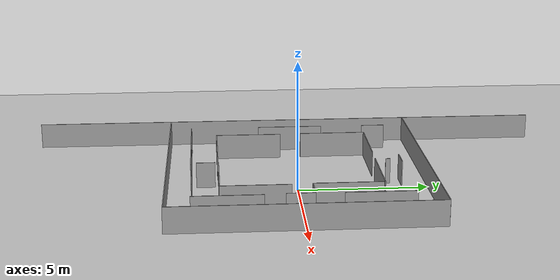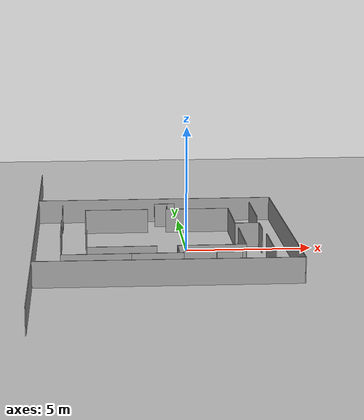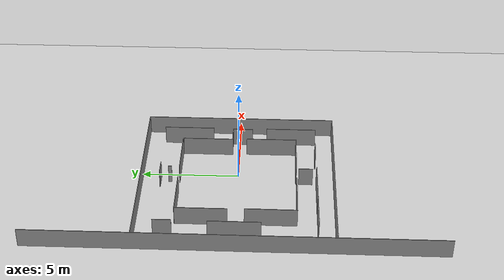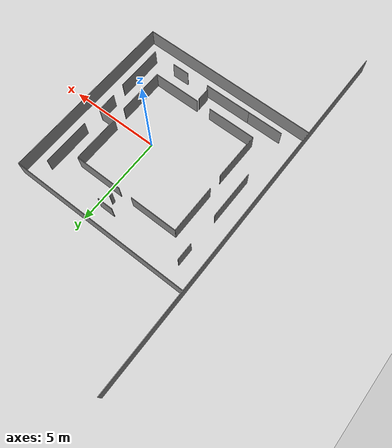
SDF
<sdf version="1.6">
 <world name="default">
  <light name="sun" type="directional">
   <pose>0 0 10 0 -0 0</pose>
   <diffuse>0.8 0.8 0.8 1</diffuse>
   <specular>0.2 0.2 0.2 1</specular>
   <attenuation>
    <range>1000</range>
    <constant>0.9</constant>
    <linear>0.01</linear>
    <quadratic>0.001</quadratic>
   </attenuation>
   <direction>-0.5 0.1 -0.9</direction>
  </light>
  <model name="ground_plane">
   <static>1</static>
   <link name="link">
    <collision name="collision">
     <geometry><plane><normal>0 0 1</normal><size>100 100</size></plane></geometry>
     <surface>
      <contact><collide_bitmask>65535</collide_bitmask></contact>
      <friction><ode><mu>100</mu><mu2>50</mu2></ode></friction>
     </surface>
    </collision>
    <visual name="visual">
     <cast_shadows>0</cast_shadows>
     <geometry><plane><normal>0 0 1</normal><size>100 100</size></plane></geometry>
     <material>
      <script><uri>file://media/materials/scripts/gazebo.material</uri><name>Gazebo/Grey</name></script>
     </material>
    </visual>
   </link>
  </model>
  <gravity>0 0 -9.8</gravity>
  <magnetic_field>6e-06 2.3e-05 -4.2e-05</magnetic_field>
  <atmosphere type="adiabatic"/>
  <physics name="default_physics" default="0" type="ode">
   <max_step_size>0.001</max_step_size>
   <real_time_factor>1</real_time_factor>
   <real_time_update_rate>1000</real_time_update_rate>
  </physics>
  <scene><ambient>0.4 0.4 0.4 1</ambient><background>0.7 0.7 0.7 1</background><shadows>1</shadows></scene>
  <audio><device>default</device></audio>
  <spherical_coordinates>
   <surface_model>EARTH_WGS84</surface_model>
   <latitude_deg>0</latitude_deg>
   <longitude_deg>0</longitude_deg>
   <elevation>0</elevation>
   <heading_deg>0</heading_deg>
  </spherical_coordinates>
  <model name="unit_box_clone">
   <static>1</static>
   <pose>2.03915 -1.68838 0.499915 6.5e-05 1e-06 -0.002283</pose>
   <link name="link">
    <inertial>
     <mass>1</mass>
     <inertia>
      <ixx>0.166667</ixx>
      <ixy>0</ixy>
      <ixz>0</ixz>
      <iyy>0.166667</iyy>
      <iyz>0</iyz>
      <izz>0.166667</izz>
     </inertia>
    </inertial>
    <collision name="collision"><geometry><box><size>0.030686 2.62977 1</size></box></geometry></collision>
    <visual name="visual">
     <geometry><box><size>0.030686 2.62977 1</size></box></geometry>
     <material>
      <script><name>Gazebo/Grey</name><uri>file://media/materials/scripts/gazebo.material</uri></script>
     </material>
    </visual>
   </link>
  </model>
  <model name="unit_box_clone_1">
   <pose>-3.99959 -1.71412 0.499915 6.5e-05 1e-06 -0.010168</pose>
   <link name="link">
    <inertial>
     <mass>1</mass>
     <inertia>
      <ixx>0.166667</ixx>
      <ixy>0</ixy>
      <ixz>0</ixz>
      <iyy>0.166667</iyy>
      <iyz>0</iyz>
      <izz>0.166667</izz>
     </inertia>
    </inertial>
    <collision name="collision"><geometry><box><size>0.030686 2.62977 1</size></box></geometry></collision>
    <visual name="visual">
     <geometry><box><size>0.030686 2.62977 1</size></box></geometry>
     <material>
      <script><name>Gazebo/Grey</name><uri>file://media/materials/scripts/gazebo.material</uri></script>
     </material>
    </visual>
   </link>
  </model>
  <model name="unit_box_clone_clone_0">
   <static>1</static>
   <pose>-4.02006 1.73607 0.499919 6.5e-05 1e-06 -0.002283</pose>
   <link name="link">
    <inertial>
     <mass>1</mass>
     <inertia>
      <ixx>0.166667</ixx>
      <ixy>0</ixy>
      <ixz>0</ixz>
      <iyy>0.166667</iyy>
      <iyz>0</iyz>
      <izz>0.166667</izz>
     </inertia>
    </inertial>
    <collision name="collision"><geometry><box><size>0.030686 2.62977 1</size></box></geometry></collision>
    <visual name="visual">
     <geometry><box><size>0.030686 2.62977 1</size></box></geometry>
     <material>
      <script><name>Gazebo/Grey</name><uri>file://media/materials/scripts/gazebo.material</uri></script>
     </material>
    </visual>
   </link>
  </model>
  <model name="unit_box_clone_clone_1">
   <static>1</static>
   <pose>-0.565921 3.52655 0.500135 6.5e-05 1e-06 -0.002283</pose>
   <link name="link">
    <inertial>
     <mass>1</mass>
     <inertia>
      <ixx>0.166667</ixx>
      <ixy>0</ixy>
      <ixz>0</ixz>
      <iyy>0.166667</iyy>
      <iyz>0</iyz>
      <izz>0.166667</izz>
     </inertia>
    </inertial>
    <collision name="collision"><geometry><box><size>0.030686 0.181377 1</size></box></geometry></collision>
    <visual name="visual">
     <geometry><box><size>0.030686 0.181377 1</size></box></geometry>
     <material>
      <script><name>Gazebo/Grey</name><uri>file://media/materials/scripts/gazebo.material</uri></script>
     </material>
    </visual>
   </link>
  </model>
  <model name="unit_box_clone_clone_1_clone">
   <static>1</static>
   <pose>4.00155 0.004054 0.49991 6.5e-05 1e-06 -0.002283</pose>
   <link name="link">
    <inertial>
     <mass>1</mass>
     <inertia>
      <ixx>0.166667</ixx>
      <ixy>0</ixy>
      <ixz>0</ixz>
      <iyy>0.166667</iyy>
      <iyz>0</iyz>
      <izz>0.166667</izz>
     </inertia>
    </inertial>
    <collision name="collision"><geometry><box><size>0.030686 10.0135 1</size></box></geometry></collision>
    <visual name="visual">
     <geometry><box><size>0.030686 10.0135 1</size></box></geometry>
     <material>
      <script><name>Gazebo/Grey</name><uri>file://media/materials/scripts/gazebo.material</uri></script>
     </material>
    </visual>
   </link>
  </model>
  <model name="unit_box_clone_clone_1_clone_0">
   <static>1</static>
   <pose>-1.00715 4.99409 0.4999 1e-06 -6.5e-05 1.57317</pose>
   <link name="link">
    <inertial>
     <mass>1</mass>
     <inertia>
      <ixx>0.166667</ixx>
      <ixy>0</ixy>
      <ixz>0</ixz>
      <iyy>0.166667</iyy>
      <iyz>0</iyz>
      <izz>0.166667</izz>
     </inertia>
    </inertial>
    <collision name="collision"><geometry><box><size>0.030686 10.0135 1</size></box></geometry></collision>
    <visual name="visual">
     <geometry><box><size>0.030686 10.0135 1</size></box></geometry>
     <material>
      <script><name>Gazebo/Grey</name><uri>file://media/materials/scripts/gazebo.material</uri></script>
     </material>
    </visual>
   </link>
  </model>
  <model name="unit_box_clone_clone">
   <static>1</static>
   <pose>1.9931 1.68739 0.499915 6.5e-05 1e-06 -0.002283</pose>
   <link name="link">
    <inertial>
     <mass>1</mass>
     <inertia>
      <ixx>0.166667</ixx>
      <ixy>0</ixy>
      <ixz>0</ixz>
      <iyy>0.166667</iyy>
      <iyz>0</iyz>
      <izz>0.166667</izz>
     </inertia>
    </inertial>
    <collision name="collision"><geometry><box><size>0.030686 2.62977 1</size></box></geometry></collision>
    <visual name="visual">
     <geometry><box><size>0.030686 2.62977 1</size></box></geometry>
     <material>
      <script><name>Gazebo/Grey</name><uri>file://media/materials/scripts/gazebo.material</uri></script>
     </material>
    </visual>
   </link>
  </model>
  <model name="unit_box_clone_clone_2">
   <static>1</static>
   <pose>0.673655 3.0358 0.500089 1e-06 -6.5e-05 1.57034</pose>
   <link name="link">
    <inertial>
     <mass>1</mass>
     <inertia>
      <ixx>0.166667</ixx>
      <ixy>0</ixy>
      <ixz>0</ixz>
      <iyy>0.166667</iyy>
      <iyz>0</iyz>
      <izz>0.166667</izz>
     </inertia>
    </inertial>
    <collision name="collision"><geometry><box><size>0.030686 2.62977 1</size></box></geometry></collision>
    <visual name="visual">
     <geometry><box><size>0.030686 2.62977 1</size></box></geometry>
     <material>
      <script><name>Gazebo/Grey</name><uri>file://media/materials/scripts/gazebo.material</uri></script>
     </material>
    </visual>
   </link>
  </model>
  <model name="unit_box_clone_clone_2_clone">
   <static>1</static>
   <pose>-2.71086 3.04646 0.500089 1e-06 -6.5e-05 1.57034</pose>
   <link name="link">
    <inertial>
     <mass>1</mass>
     <inertia>
      <ixx>0.166667</ixx>
      <ixy>0</ixy>
      <ixz>0</ixz>
      <iyy>0.166667</iyy>
      <iyz>0</iyz>
      <izz>0.166667</izz>
     </inertia>
    </inertial>
    <collision name="collision"><geometry><box><size>0.030686 2.62977 1</size></box></geometry></collision>
    <visual name="visual">
     <geometry><box><size>0.030686 2.62977 1</size></box></geometry>
     <material>
      <script><name>Gazebo/Grey</name><uri>file://media/materials/scripts/gazebo.material</uri></script>
     </material>
    </visual>
   </link>
  </model>
  <model name="unit_box_clone_clone_2_clone_clone">
   <static>1</static>
   <pose>-2.67705 -3.01015 0.500089 1e-06 -6.5e-05 1.57034</pose>
   <link name="link">
    <inertial>
     <mass>1</mass>
     <inertia>
      <ixx>0.166667</ixx>
      <ixy>0</ixy>
      <ixz>0</ixz>
      <iyy>0.166667</iyy>
      <iyz>0</iyz>
      <izz>0.166667</izz>
     </inertia>
    </inertial>
    <collision name="collision"><geometry><box><size>0.030686 2.62977 1</size></box></geometry></collision>
    <visual name="visual">
     <geometry><box><size>0.030686 2.62977 1</size></box></geometry>
     <material>
      <script><name>Gazebo/Grey</name><uri>file://media/materials/scripts/gazebo.material</uri></script>
     </material>
    </visual>
   </link>
  </model>
  <model name="unit_box_clone_clone_2_clone_clone_0">
   <static>1</static>
   <pose>0.723903 -2.99052 0.500089 1e-06 -6.5e-05 1.57034</pose>
   <link name="link">
    <inertial>
     <mass>1</mass>
     <inertia>
      <ixx>0.166667</ixx>
      <ixy>0</ixy>
      <ixz>0</ixz>
      <iyy>0.166667</iyy>
      <iyz>0</iyz>
      <izz>0.166667</izz>
     </inertia>
    </inertial>
    <collision name="collision"><geometry><box><size>0.030686 2.62977 1</size></box></geometry></collision>
    <visual name="visual">
     <geometry><box><size>0.030686 2.62977 1</size></box></geometry>
     <material>
      <script><name>Gazebo/Grey</name><uri>file://media/materials/scripts/gazebo.material</uri></script>
     </material>
    </visual>
   </link>
  </model>
  <model name="unit_box_clone_clone_1_clone_0_clone">
   <static>1</static>
   <pose>-1.02537 -4.94283 0.4999 2e-06 -6.5e-05 1.56326</pose>
   <link name="link">
    <inertial>
     <mass>1</mass>
     <inertia>
      <ixx>0.166667</ixx>
      <ixy>0</ixy>
      <ixz>0</ixz>
      <iyy>0.166667</iyy>
      <iyz>0</iyz>
      <izz>0.166667</izz>
     </inertia>
    </inertial>
    <collision name="collision"><geometry><box><size>0.030686 10.0135 1</size></box></geometry></collision>
    <visual name="visual">
     <geometry><box><size>0.030686 10.0135 1</size></box></geometry>
     <material>
      <script><name>Gazebo/Grey</name><uri>file://media/materials/scripts/gazebo.material</uri></script>
     </material>
    </visual>
   </link>
  </model>
  <model name="unit_box_clone_clone_3">
   <static>1</static>
   <pose>3.02207 2.75128 0.499915 6.5e-05 1e-06 -0.002283</pose>
   <link name="link">
    <inertial>
     <mass>1</mass>
     <inertia>
      <ixx>0.166667</ixx>
      <ixy>0</ixy>
      <ixz>0</ixz>
      <iyy>0.166667</iyy>
      <iyz>0</iyz>
      <izz>0.166667</izz>
     </inertia>
    </inertial>
    <collision name="collision"><geometry><box><size>0.030686 2.62977 1</size></box></geometry></collision>
    <visual name="visual">
     <geometry><box><size>0.030686 2.62977 1</size></box></geometry>
     <material>
      <script><name>Gazebo/Grey</name><uri>file://media/materials/scripts/gazebo.material</uri></script>
     </material>
    </visual>
   </link>
  </model>
  <model name="unit_box_clone_clone_4">
   <static>1</static>
   <pose>-5.00613 0.054899 0.499915 6.5e-05 1e-06 -0.002283</pose>
   <link name="link">
    <inertial>
     <mass>1</mass>
     <inertia>
      <ixx>0.166667</ixx>
      <ixy>0</ixy>
      <ixz>0</ixz>
      <iyy>0.166667</iyy>
      <iyz>0</iyz>
      <izz>0.166667</izz>
     </inertia>
    </inertial>
    <collision name="collision"><geometry><box><size>0.030686 2.62977 1</size></box></geometry></collision>
    <visual name="visual">
     <geometry><box><size>0.030686 2.62977 1</size></box></geometry>
     <material>
      <script><name>Gazebo/Grey</name><uri>file://media/materials/scripts/gazebo.material</uri></script>
     </material>
    </visual>
   </link>
  </model>
  <model name="unit_box_clone_clone_5">
   <static>1</static>
   <pose>3.02851 -2.73253 0.499915 6.5e-05 1e-06 -0.002283</pose>
   <link name="link">
    <inertial>
     <mass>1</mass>
     <inertia>
      <ixx>0.166667</ixx>
      <ixy>0</ixy>
      <ixz>0</ixz>
      <iyy>0.166667</iyy>
      <iyz>0</iyz>
      <izz>0.166667</izz>
     </inertia>
    </inertial>
    <collision name="collision"><geometry><box><size>0.030686 2.62977 1</size></box></geometry></collision>
    <visual name="visual">
     <geometry><box><size>0.030686 2.62977 1</size></box></geometry>
     <material>
      <script><name>Gazebo/Grey</name><uri>file://media/materials/scripts/gazebo.material</uri></script>
     </material>
    </visual>
   </link>
  </model>
  <model name="unit_box_clone_clone_2_clone_clone_0_clone">
   <static>1</static>
   <pose>-3.68162 -4.04112 0.500088 1e-06 -6.5e-05 1.57034</pose>
   <link name="link">
    <inertial>
     <mass>1</mass>
     <inertia>
      <ixx>0.166667</ixx>
      <ixy>0</ixy>
      <ixz>0</ixz>
      <iyy>0.166667</iyy>
      <iyz>0</iyz>
      <izz>0.166667</izz>
     </inertia>
    </inertial>
    <collision name="collision"><geometry><box><size>0.030686 2.62977 1</size></box></geometry></collision>
    <visual name="visual">
     <geometry><box><size>0.030686 2.62977 1</size></box></geometry>
     <material>
      <script><name>Gazebo/Grey</name><uri>file://media/materials/scripts/gazebo.material</uri></script>
     </material>
    </visual>
   </link>
  </model>
  <model name="unit_box_clone_clone_2_clone_clone_0_clone_0">
   <static>1</static>
   <pose>-0.638843 4.02521 0.50009 1e-06 -6.5e-05 1.57034</pose>
   <link name="link">
    <inertial>
     <mass>1</mass>
     <inertia>
      <ixx>0.166667</ixx>
      <ixy>0</ixy>
      <ixz>0</ixz>
      <iyy>0.166667</iyy>
      <iyz>0</iyz>
      <izz>0.166667</izz>
     </inertia>
    </inertial>
    <collision name="collision"><geometry><box><size>0.030686 0.847368 1</size></box></geometry></collision>
    <visual name="visual">
     <geometry><box><size>0.030686 0.847368 1</size></box></geometry>
     <material>
      <script><name>Gazebo/Grey</name><uri>file://media/materials/scripts/gazebo.material</uri></script>
     </material>
    </visual>
   </link>
  </model>
  <model name="unit_box_clone_clone_3_clone">
   <static>1</static>
   <pose>-6.02253 0.035437 0.499748 6.5e-05 1e-06 -0.002283</pose>
   <link name="link">
    <inertial>
     <mass>1</mass>
     <inertia>
      <ixx>0.166667</ixx>
      <ixy>0</ixy>
      <ixz>0</ixz>
      <iyy>0.166667</iyy>
      <iyz>0</iyz>
      <izz>0.166667</izz>
     </inertia>
    </inertial>
    <collision name="collision"><geometry><box><size>0.030686 20.8021 1</size></box></geometry></collision>
    <visual name="visual">
     <geometry><box><size>0.030686 20.8021 1</size></box></geometry>
     <material>
      <script><name>Gazebo/Grey</name><uri>file://media/materials/scripts/gazebo.material</uri></script>
     </material>
    </visual>
   </link>
  </model>
  <model name="unit_box_clone_clone_3_clone_clone">
   <static>1</static>
   <pose>-0.578801 -3.47754 0.499969 6.5e-05 1e-06 -0.002283</pose>
   <link name="link">
    <inertial>
     <mass>1</mass>
     <inertia>
      <ixx>0.166667</ixx>
      <ixy>0</ixy>
      <ixz>0</ixz>
      <iyy>0.166667</iyy>
      <iyz>0</iyz>
      <izz>0.166667</izz>
     </inertia>
    </inertial>
    <collision name="collision"><geometry><box><size>0.030686 0.720171 1</size></box></geometry></collision>
    <visual name="visual">
     <geometry><box><size>0.030686 0.720171 1</size></box></geometry>
     <material>
      <script><name>Gazebo/Grey</name><uri>file://media/materials/scripts/gazebo.material</uri></script>
     </material>
    </visual>
   </link>
  </model>
  <model name="unit_box_clone_clone_2_clone_clone_0_clone_clone_0">
   <static>1</static>
   <pose>-1.72174 -4.03985 0.500089 1e-06 -6.5e-05 1.57034</pose>
   <link name="link">
    <inertial>
     <mass>1</mass>
     <inertia>
      <ixx>0.166667</ixx>
      <ixy>0</ixy>
      <ixz>0</ixz>
      <iyy>0.166667</iyy>
      <iyz>0</iyz>
      <izz>0.166667</izz>
     </inertia>
    </inertial>
    <collision name="collision"><geometry><box><size>0.030686 2.62977 1</size></box></geometry></collision>
    <visual name="visual">
     <geometry><box><size>0.030686 2.62977 1</size></box></geometry>
     <material>
      <script><name>Gazebo/Grey</name><uri>file://media/materials/scripts/gazebo.material</uri></script>
     </material>
    </visual>
   </link>
  </model>
  <model name="unit_box_clone_clone_2_clone_clone_0_clone_clone_clone">
   <static>1</static>
   <pose>2.47659 0.390193 0.50009 1e-06 -6.5e-05 1.57034</pose>
   <link name="link">
    <inertial>
     <mass>1</mass>
     <inertia>
      <ixx>0.166667</ixx>
      <ixy>0</ixy>
      <ixz>0</ixz>
      <iyy>0.166667</iyy>
      <iyz>0</iyz>
      <izz>0.166667</izz>
     </inertia>
    </inertial>
    <collision name="collision"><geometry><box><size>0.030686 0.956008 1</size></box></geometry></collision>
    <visual name="visual">
     <geometry><box><size>0.030686 0.956008 1</size></box></geometry>
     <material>
      <script><name>Gazebo/Grey</name><uri>file://media/materials/scripts/gazebo.material</uri></script>
     </material>
    </visual>
   </link>
  </model>
  <model name="unit_box_clone_clone_3_clone_clone_clone">
   <static>1</static>
   <pose>2.9681 -0.12798 0.499969 6.5e-05 1e-06 -0.002283</pose>
   <link name="link">
    <inertial>
     <mass>1</mass>
     <inertia>
      <ixx>0.166667</ixx>
      <ixy>0</ixy>
      <ixz>0</ixz>
      <iyy>0.166667</iyy>
      <iyz>0</iyz>
      <izz>0.166667</izz>
     </inertia>
    </inertial>
    <collision name="collision"><geometry><box><size>0.030686 1.06541 1</size></box></geometry></collision>
    <visual name="visual">
     <geometry><box><size>0.030686 1.06541 1</size></box></geometry>
     <material>
      <script><name>Gazebo/Grey</name><uri>file://media/materials/scripts/gazebo.material</uri></script>
     </material>
    </visual>
   </link>
  </model>
  <model name="unit_box_clone_clone_3_clone_clone_clone_0">
   <static>1</static>
   <pose>-4.97667 3.56601 0.499969 6.5e-05 1e-06 -0.002283</pose>
   <link name="link">
    <inertial>
     <mass>1</mass>
     <inertia>
      <ixx>0.166667</ixx>
      <ixy>0</ixy>
      <ixz>0</ixz>
      <iyy>0.166667</iyy>
      <iyz>0</iyz>
      <izz>0.166667</izz>
     </inertia>
    </inertial>
    <collision name="collision"><geometry><box><size>0.030686 0.935024 1</size></box></geometry></collision>
    <visual name="visual">
     <geometry><box><size>0.030686 0.935024 1</size></box></geometry>
     <material>
      <script><name>Gazebo/Grey</name><uri>file://media/materials/scripts/gazebo.material</uri></script>
     </material>
    </visual>
   </link>
  </model>
  <model name="unit_box_clone_clone_2_clone_clone_0_clone_clone_clone_clone_0">
   <static>1</static>
   <pose>1.29014 -4.00606 0.50009 1e-06 -6.5e-05 1.57034</pose>
   <link name="link">
    <inertial>
     <mass>1</mass>
     <inertia>
      <ixx>0.166667</ixx>
      <ixy>0</ixy>
      <ixz>0</ixz>
      <iyy>0.166667</iyy>
      <iyz>0</iyz>
      <izz>0.166667</izz>
     </inertia>
    </inertial>
    <collision name="collision"><geometry><box><size>0.030686 0.956008 1</size></box></geometry></collision>
    <visual name="visual">
     <geometry><box><size>0.030686 0.956008 1</size></box></geometry>
     <material>
      <script><name>Gazebo/Grey</name><uri>file://media/materials/scripts/gazebo.material</uri></script>
     </material>
    </visual>
   </link>
  </model>
 </world>
</sdf>
